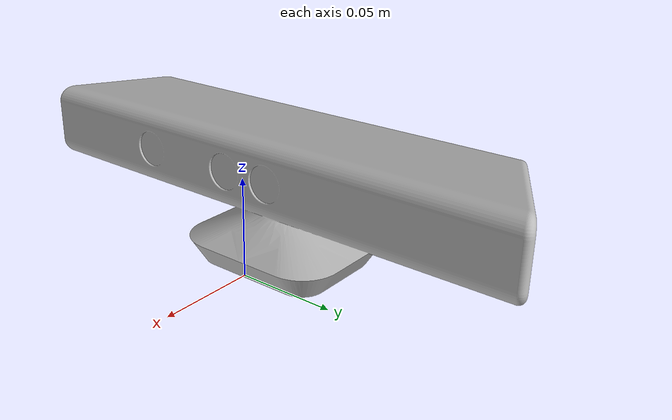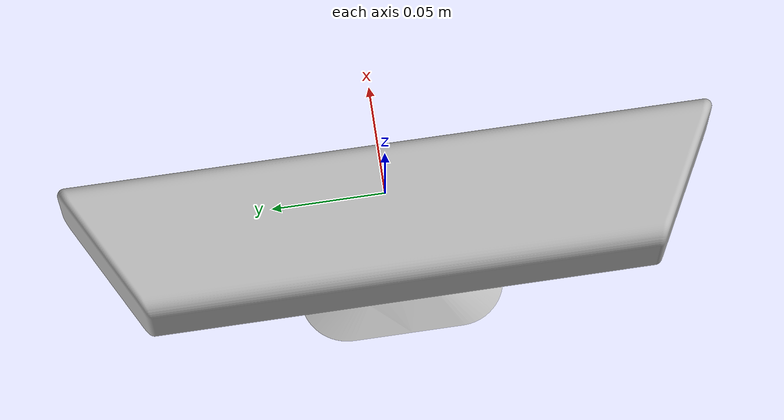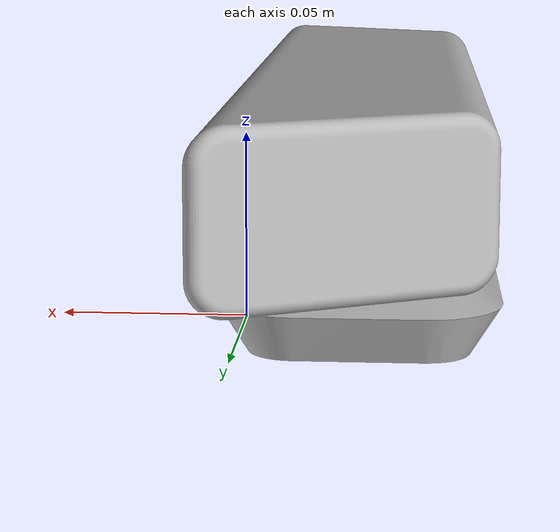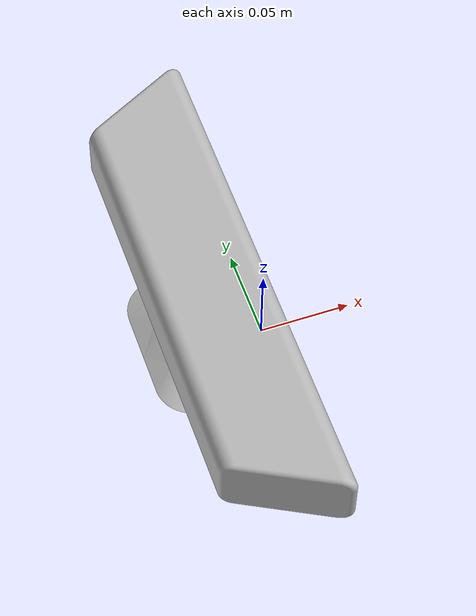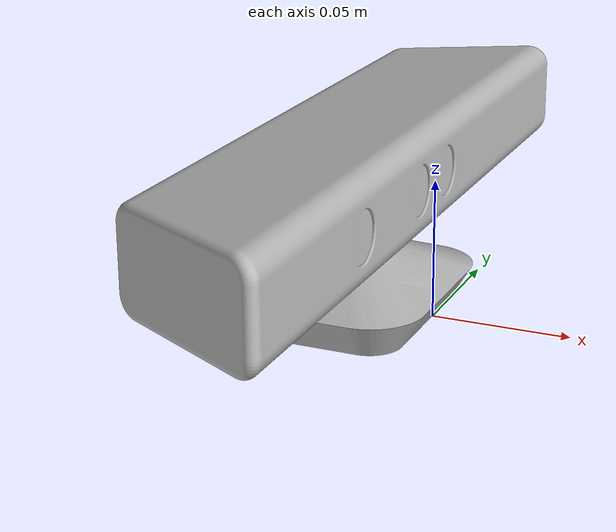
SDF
<?xml version="1.0" ?>
<sdf version="1.5">
  <model name="kinect_ros2_sensor">
  <static>true</static>
    <pose>0 0 0.050 0 0 0</pose>
    <link name="link">
      <collision name="collision">
        <geometry>
          <mesh>
            <uri>model://kinect/meshes/kinect.dae</uri>
          </mesh>
        </geometry>
      </collision>
      <visual name="visual">
        <geometry>
          <mesh>
            <uri>model://kinect/meshes/kinect.dae</uri>
          </mesh>
        </geometry>
      </visual>
      <sensor name="kinect_depth" type="depth">
        <always_on>1</always_on>
        <update_rate>30</update_rate>
        <pose>0.02 -0.047 0.015 0 0 0</pose>
        <camera name="kinect_depth_camera">
        </camera>
	<plugin name="kinect_depth_driver" filename="libgazebo_ros_camera.so">
            <ros>
            </ros>
            <camera_name>ms_kinect_depth</camera_name>
            <frame_name>kinect_depth_frame</frame_name>
            <hack_baseline>0.07</hack_baseline>
            <min_depth>0.001</min_depth>
          </plugin>
      </sensor>

      <sensor name="kinect_rgb" type="camera">
        <always_on>true</always_on>
        <visualize>true</visualize>
        <update_rate>30</update_rate>
	<pose>0 0 0.015 0 0 0</pose>
        <camera name="kinect_rgb_camera">
          <horizontal_fov>1.02974</horizontal_fov>
          <image>
            <width>1920</width>
            <height>1080</height>
            <format>R8G8B8</format>
          </image>
          <clip>
            <near>0.02</near>
            <far>300</far>
          </clip>
          <noise>
            <type>gaussian</type>
            <mean>0.0</mean>
            <stddev>0.007</stddev>
          </noise>
        </camera>
          <plugin name="kinect_rgb_driver" filename="libgazebo_ros_camera.so">
            <ros>
            </ros>
            <camera_name>ms_kinect_rgb</camera_name>
            <frame_name>kinect_rgb_frame</frame_name>
            <hack_baseline>0.07</hack_baseline>
          </plugin>
      </sensor>
    </link>
  </model>
</sdf>
